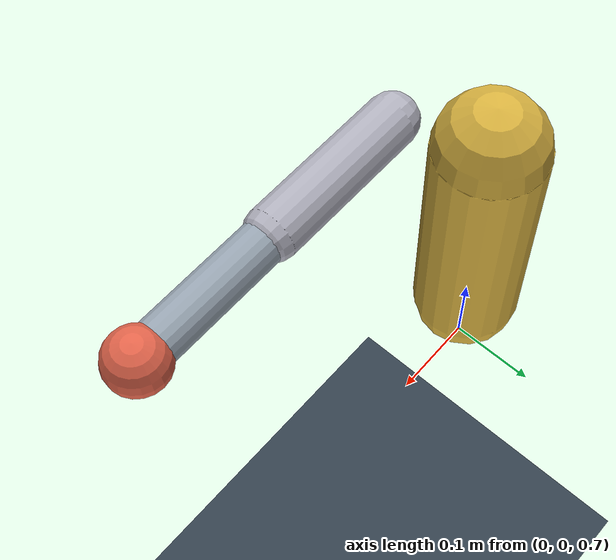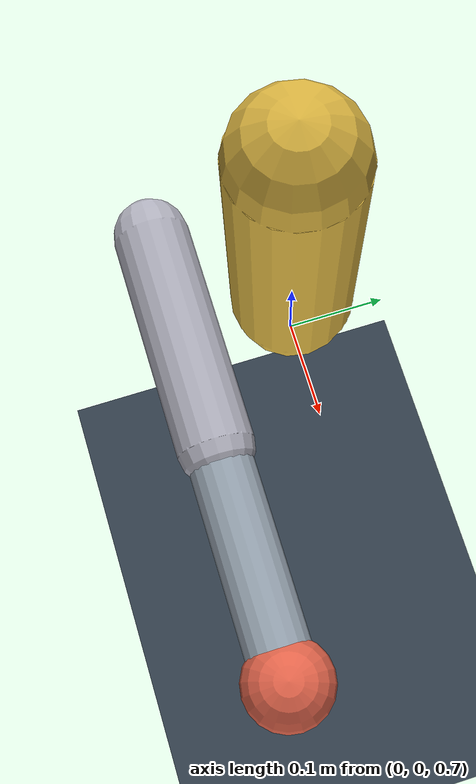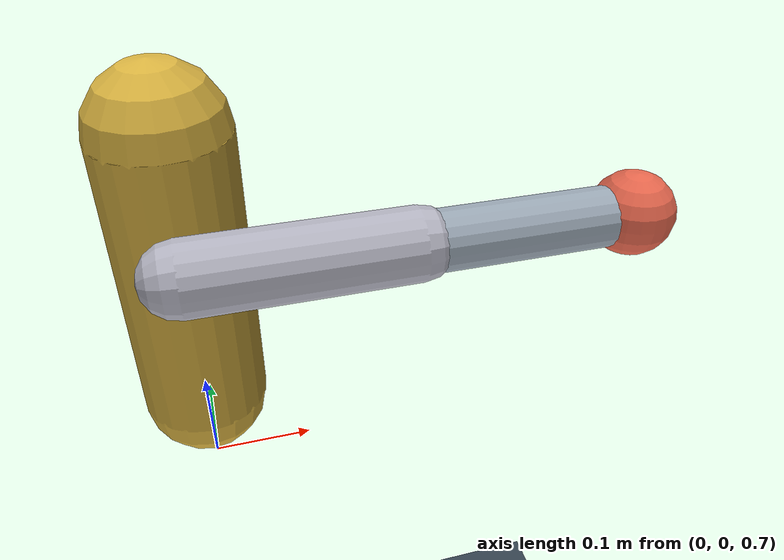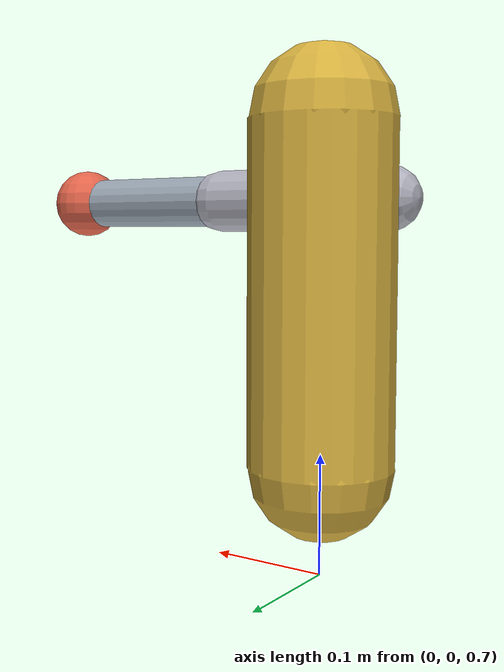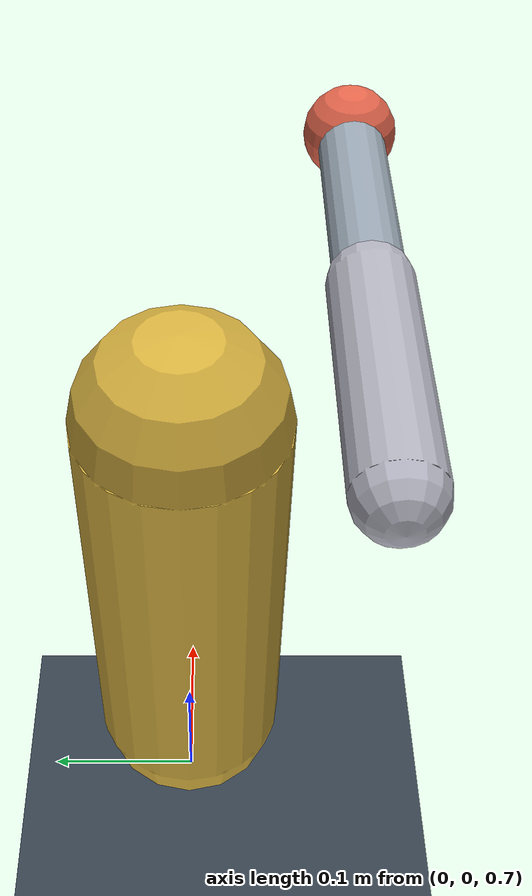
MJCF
<mujoco model="mini-puppet">
  <!-- Freejoint + arm: exercises the Menagerie-like playback+BC path. -->
  <compiler angle="radian"/>
  <default>
    <joint limited="true" range="-2.5 2.5"/>
    <position kp="200" dampratio="1" inheritrange="1"/>
  </default>
  <worldbody>
    <light pos="0 0 3"/>
    <geom type="plane" size="2 2 0.05" rgba="0.2 0.25 0.3 1"/>
    <body name="pelvis" pos="0 0 0.79">
      <freejoint name="floating_base"/>
      <geom type="capsule" fromto="0 0 0 0 0 0.28" size="0.06" rgba="0.85 0.7 0.25 1"/>
      <body name="right_shoulder_pitch_link" pos="0 -0.12 0.22">
        <joint name="right_shoulder_pitch_joint" axis="0 1 0"/>
        <geom type="capsule" fromto="0 0 0 0.18 0 0" size="0.03" rgba="0.7 0.7 0.75 1"/>
        <body name="right_elbow_link" pos="0.18 0 0">
          <joint name="right_elbow_joint" axis="0 1 0"/>
          <geom type="capsule" fromto="0 0 0 0.18 0 0" size="0.025" rgba="0.6 0.65 0.7 1"/>
          <body name="right_wrist_yaw_link" pos="0.18 0 0">
            <geom type="sphere" size="0.035" rgba="0.9 0.4 0.3 1"/>
          </body>
        </body>
      </body>
    </body>
  </worldbody>
  <actuator>
    <position name="right_shoulder_pitch_joint" joint="right_shoulder_pitch_joint"/>
    <position name="right_elbow_joint" joint="right_elbow_joint"/>
  </actuator>
  <keyframe>
    <key name="stand" qpos="0 0 0.79 1 0 0 0 0 0" ctrl="0 0"/>
  </keyframe>
</mujoco>
